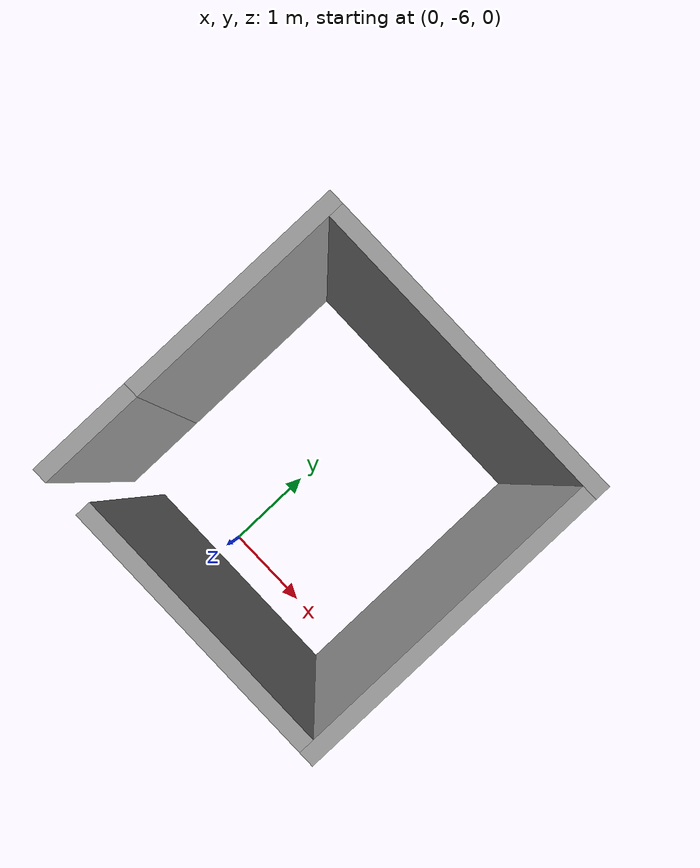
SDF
<?xml version='1.0'?>
<sdf version='1.6'>
  <model name='room'>
    <pose frame=''>0.16 -4.82 0 0 -0 0</pose>
    <link name='Wall_0'>
      <collision name='Wall_0_Collision'>
        <geometry>
          <box>
            <size>2.25 0.15 2.5</size>
          </box>
        </geometry>
        <pose frame=''>0 0 1.25 0 -0 0</pose>
      </collision>
      <visual name='Wall_0_Visual'>
        <pose frame=''>0 0 1.25 0 -0 0</pose>
        <geometry>
          <box>
            <size>2.25 0.15 2.5</size>
          </box>
        </geometry>
        <material>
          <script>
            <uri>file://media/materials/scripts/gazebo.material</uri>
            <name>Gazebo/Grey</name>
          </script>
          <ambient>1 1 1 1</ambient>
        </material>
        <meta>
          <layer>0</layer>
        </meta>
      </visual>
      <pose frame=''>-1.55 0.5 0 0 -0 1.5708</pose>
    </link>
    <link name='Wall_1'>
      <collision name='Wall_1_Collision'>
        <geometry>
          <box>
            <size>3.25 0.15 2.5</size>
          </box>
        </geometry>
        <pose frame=''>0 0 1.25 0 -0 0</pose>
      </collision>
      <visual name='Wall_1_Visual'>
        <pose frame=''>0 0 1.25 0 -0 0</pose>
        <geometry>
          <box>
            <size>3.25 0.15 2.5</size>
          </box>
        </geometry>
        <material>
          <script>
            <uri>file://media/materials/scripts/gazebo.material</uri>
            <name>Gazebo/Grey</name>
          </script>
          <ambient>1 1 1 1</ambient>
        </material>
        <meta>
          <layer>0</layer>
        </meta>
      </visual>
      <pose frame=''>-0 1.55 0 0 -0 0</pose>
    </link>
    <link name='Wall_2'>
      <collision name='Wall_2_Collision'>
        <geometry>
          <box>
            <size>3.25 0.15 2.5</size>
          </box>
        </geometry>
        <pose frame=''>0 0 1.25 0 -0 0</pose>
      </collision>
      <visual name='Wall_2_Visual'>
        <pose frame=''>0 0 1.25 0 -0 0</pose>
        <geometry>
          <box>
            <size>3.25 0.15 2.5</size>
          </box>
        </geometry>
        <material>
          <script>
            <uri>file://media/materials/scripts/gazebo.material</uri>
            <name>Gazebo/Grey</name>
          </script>
          <ambient>1 1 1 1</ambient>
        </material>
        <meta>
          <layer>0</layer>
        </meta>
      </visual>
      <pose frame=''>1.55 0 0 0 -0 -1.5708</pose>
    </link>
    <link name='Wall_4'>
      <collision name='Wall_4_Collision'>
        <geometry>
          <box>
            <size>1.15 0.15 2.5</size>
          </box>
        </geometry>
        <pose frame=''>0 0 1.25 0 -0 0</pose>
      </collision>
      <visual name='Wall_4_Visual'>
        <pose frame=''>0 0 1.25 0 -0 0</pose>
        <geometry>
          <box>
            <size>1.15 0.15 2.5</size>
          </box>
        </geometry>
        <material>
          <script>
            <uri>file://media/materials/scripts/gazebo.material</uri>
            <name>Gazebo/Grey</name>
          </script>
          <ambient>1 1 1 1</ambient>
        </material>
        <meta>
          <layer>0</layer>
        </meta>
      </visual>
      <pose frame=''>-1.55 -1.05 0 0 -0 1.5708</pose>
    </link>
    <link name='Wall_6'>
      <collision name='Wall_6_Collision'>
        <geometry>
          <box>
            <size>2.75 0.15 2.5</size>
          </box>
        </geometry>
        <pose frame=''>0 0 1.25 0 -0 0</pose>
      </collision>
      <visual name='Wall_6_Visual'>
        <pose frame=''>0 0 1.25 0 -0 0</pose>
        <geometry>
          <box>
            <size>2.75 0.15 2.5</size>
          </box>
        </geometry>
        <material>
          <script>
            <uri>file://media/materials/scripts/gazebo.material</uri>
            <name>Gazebo/Grey</name>
          </script>
          <ambient>1 1 1 1</ambient>
        </material>
        <meta>
          <layer>0</layer>
        </meta>
      </visual>
      <pose frame=''>0.25 -1.55 0 0 -0 3.14159</pose>
    </link>
    <static>1</static>
  </model>
</sdf>
